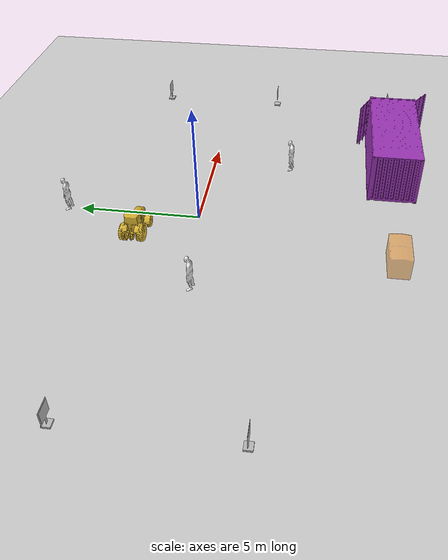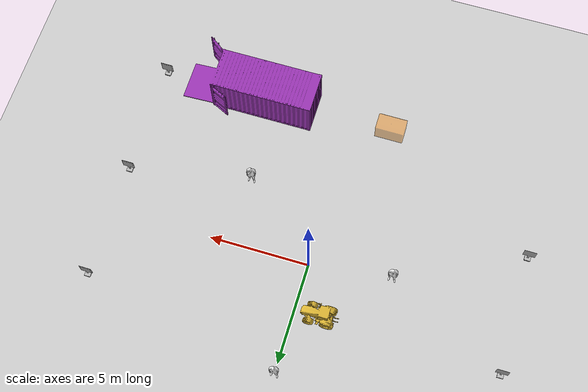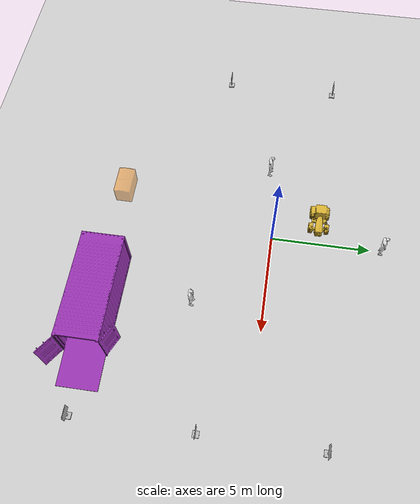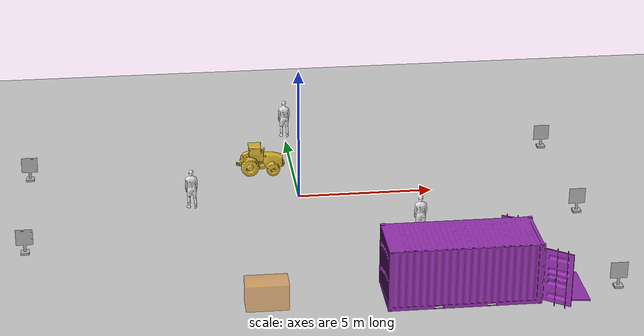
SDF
<sdf version="1.5">
 <world name="default">
  <include><uri>model://sun</uri></include>
  <include><uri>model://ground_plane</uri></include>
  <include><name>sea_container</name><uri>model://sea_container</uri><pose>2 -9 0 0 0 1.57</pose></include>
  <include><name>freezer</name><uri>model://freezer</uri><pose>-2 -8 0 0 0 1.57</pose></include>
  <include><name>tractor</name><uri>model://tractor</uri><pose>-2 2.3 0 0 0 1.57</pose></include>
  <include><name>man</name><uri>model://man</uri><pose>-4 -.5 0 0 0 3.14</pose></include>
  <include><name>man_1</name><uri>model://man</uri><pose>4 -3.5 0 0 0 3.14</pose></include>
  <include><name>man_3</name><uri>model://man</uri><pose>0 5.5 0 0 0 3.14</pose></include>
  <include><name>aruco0</name><uri>model://aruco0</uri><pose>10 -8.0 0 1.57 0 0</pose></include>
  <include><name>aruco1</name><uri>model://aruco1</uri><pose>-10 -3.395787 0 1.57 0 3.14</pose></include>
  <include><name>aruco2</name><uri>model://aruco2</uri><pose>10 -2.294088 0 1.57 0 0.0</pose></include>
  <include><name>aruco3</name><uri>model://aruco3</uri><pose>-10 2.552332 0 1.57 0 3.14</pose></include>
  <include><name>aruco4</name><uri>model://aruco4</uri><pose>10 3.427436 0 1.57 0 0</pose></include>
 </world>
</sdf>

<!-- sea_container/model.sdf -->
<sdf version="1.5">
  <model name="grapes">

    <pose>0 0 0  0 0 0</pose>

    <static>true</static>
    <link name="link">
      <inertial>
        <mass>50</mass>
        <inertia>
          <ixx>1</ixx>
          <ixy>0</ixy>
          <ixz>0</ixz>
          <iyy>1</iyy>
          <iyz>0</iyz>
          <izz>1</izz>
        </inertia>
      </inertial>

      <collision name="collision">
	    <pose>0 0 0  0 0 0</pose>
        <geometry>
          <mesh>
            <uri>model://sea_container/meshes/container.STL</uri>
          </mesh>
        </geometry>
      </collision>

      <visual name="visual">
        <geometry>
          <mesh>
            <uri>model://sea_container/meshes/container.STL</uri>
          </mesh>
        </geometry>
        <material>
           <script>
  <name>Gazebo/Purple</name>
  </script>
        </material>
      </visual>
    </link>
  </model>
</sdf>

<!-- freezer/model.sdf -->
<sdf version="1.5">
  <model name="freezer">

    <pose>0 0 0  0 0 0</pose>

    <static>true</static>
    <link name="link">
      <inertial>
        <mass>50</mass>
        <inertia>
          <ixx>1</ixx>
          <ixy>0</ixy>
          <ixz>0</ixz>
          <iyy>1</iyy>
          <iyz>0</iyz>
          <izz>1</izz>
        </inertia>
      </inertial>

      <collision name="collision">
	    <pose>0 0 0  0 0 0</pose>
        <geometry>
          <mesh>
            <uri>model://freezer/meshes/freezer.STL</uri>
          </mesh>
        </geometry>
      </collision>

      <visual name="visual">
        <geometry>
          <mesh>
            <uri>model://freezer/meshes/freezer.STL</uri>
          </mesh>
        </geometry>
        <material>
           <script>
  <name>Gazebo/OrangeTransparent</name>
  </script>
        </material>
      </visual>
    </link>
  </model>
</sdf>

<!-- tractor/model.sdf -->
<sdf version="1.5">
  <model name="tractor">

    <pose>0 0 0  0 0 0</pose>

    <static>true</static>
    <link name="link">
      <inertial>
        <mass>50</mass>
        <inertia>
          <ixx>1</ixx>
          <ixy>0</ixy>
          <ixz>0</ixz>
          <iyy>1</iyy>
          <iyz>0</iyz>
          <izz>1</izz>
        </inertia>
      </inertial>

      <collision name="collision">
	    <pose>0 0 0  0 0 0</pose>
        <geometry>
          <mesh>
            <uri>model://tractor/meshes/tractor.stl</uri>
          </mesh>
        </geometry>
      </collision>

      <visual name="visual">
        <geometry>
          <mesh>
            <uri>model://tractor/meshes/tractor.stl</uri>
          </mesh>
        </geometry>
        <material>
           <script>
  <name>Gazebo/Gold</name>
  </script>
        </material>
      </visual>
    </link>
  </model>
</sdf>

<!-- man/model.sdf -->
<sdf version="1.5">
  <model name="man">

    <pose>0 0 0  0 0 0</pose>

    <static>true</static>
    <link name="link">
      <inertial>
        <mass>50</mass>
        <inertia>
          <ixx>1</ixx>
          <ixy>0</ixy>
          <ixz>0</ixz>
          <iyy>1</iyy>
          <iyz>0</iyz>
          <izz>1</izz>
        </inertia>
      </inertial>

      <collision name="collision">
	    <pose>0 0 0  0 0 0</pose>
        <geometry>
          <mesh>
            <uri>model://man/meshes/man.stl</uri>
          </mesh>
        </geometry>
      </collision>

      <visual name="visual">
        <geometry>
          <mesh>
            <uri>model://man/meshes/man.stl</uri>
          </mesh>
        </geometry>
        <material>
           <script>
  <name>Gazebo/White</name>
  </script>
        </material>
      </visual>
    </link>
  </model>
</sdf>

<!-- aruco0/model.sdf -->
<sdf version="1.5">
  <model name="wall_vineyard">

    <pose>0 0 0  0 0 0</pose>

    <static>true</static>
    <link name="link">
      <inertial>
        <mass>50</mass>
        <inertia>
          <ixx>1</ixx>
          <ixy>0</ixy>
          <ixz>0</ixz>
          <iyy>1</iyy>
          <iyz>0</iyz>
          <izz>1</izz>
        </inertia>
      </inertial>

      <collision name="collision">
	    <pose>0 0 0  0 0 0</pose>
        <geometry>
          <mesh>
            <uri>model://aruco0/meshes/aruco_marker.obj</uri>
          </mesh>
        </geometry>
      </collision>
      <visual name="visual">
        <geometry>
          <mesh>
            <uri>model://aruco0/meshes/aruco_marker.obj</uri>
          </mesh>
        </geometry>
      </visual>
    </link>
  </model>
</sdf>

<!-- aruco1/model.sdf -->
<sdf version="1.5">
  <model name="wall_vineyard">

    <pose>0 0 0  0 0 0</pose>

    <static>true</static>
    <link name="link">
      <inertial>
        <mass>50</mass>
        <inertia>
          <ixx>1</ixx>
          <ixy>0</ixy>
          <ixz>0</ixz>
          <iyy>1</iyy>
          <iyz>0</iyz>
          <izz>1</izz>
        </inertia>
      </inertial>

      <collision name="collision">
	    <pose>0 0 0  0 0 0</pose>
        <geometry>
          <mesh>
            <uri>model://aruco1/meshes/aruco_marker.obj</uri>
          </mesh>
        </geometry>
      </collision>
      <visual name="visual">
        <geometry>
          <mesh>
            <uri>model://aruco1/meshes/aruco_marker.obj</uri>
          </mesh>
        </geometry>
      </visual>
    </link>
  </model>
</sdf>

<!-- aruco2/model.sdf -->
<sdf version="1.5">
  <model name="wall_vineyard">

    <pose>0 0 0  0 0 0</pose>

    <static>true</static>
    <link name="link">
      <inertial>
        <mass>50</mass>
        <inertia>
          <ixx>1</ixx>
          <ixy>0</ixy>
          <ixz>0</ixz>
          <iyy>1</iyy>
          <iyz>0</iyz>
          <izz>1</izz>
        </inertia>
      </inertial>

      <collision name="collision">
	    <pose>0 0 0  0 0 0</pose>
        <geometry>
          <mesh>
            <uri>model://aruco2/meshes/aruco_marker.obj</uri>
          </mesh>
        </geometry>
      </collision>
      <visual name="visual">
        <geometry>
          <mesh>
            <uri>model://aruco2/meshes/aruco_marker.obj</uri>
          </mesh>
        </geometry>
      </visual>
    </link>
  </model>
</sdf>

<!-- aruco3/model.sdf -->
<sdf version="1.5">
  <model name="wall_vineyard">

    <pose>0 0 0  0 0 0</pose>

    <static>true</static>
    <link name="link">
      <inertial>
        <mass>50</mass>
        <inertia>
          <ixx>1</ixx>
          <ixy>0</ixy>
          <ixz>0</ixz>
          <iyy>1</iyy>
          <iyz>0</iyz>
          <izz>1</izz>
        </inertia>
      </inertial>

      <collision name="collision">
	    <pose>0 0 0  0 0 0</pose>
        <geometry>
          <mesh>
            <uri>model://aruco3/meshes/aruco_marker.obj</uri>
          </mesh>
        </geometry>
      </collision>
      <visual name="visual">
        <geometry>
          <mesh>
            <uri>model://aruco3/meshes/aruco_marker.obj</uri>
          </mesh>
        </geometry>
      </visual>
    </link>
  </model>
</sdf>

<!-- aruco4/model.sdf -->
<sdf version="1.5">
  <model name="wall_vineyard">

    <pose>0 0 0  0 0 0</pose>

    <static>true</static>
    <link name="link">
      <inertial>
        <mass>50</mass>
        <inertia>
          <ixx>1</ixx>
          <ixy>0</ixy>
          <ixz>0</ixz>
          <iyy>1</iyy>
          <iyz>0</iyz>
          <izz>1</izz>
        </inertia>
      </inertial>

      <collision name="collision">
	    <pose>0 0 0  0 0 0</pose>
        <geometry>
          <mesh>
            <uri>model://aruco4/meshes/aruco_marker.obj</uri>
          </mesh>
        </geometry>
      </collision>
      <visual name="visual">
        <geometry>
          <mesh>
            <uri>model://aruco4/meshes/aruco_marker.obj</uri>
          </mesh>
        </geometry>
      </visual>
    </link>
  </model>
</sdf>
